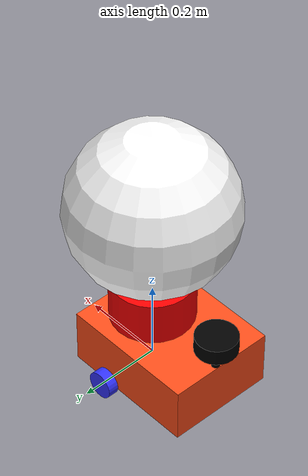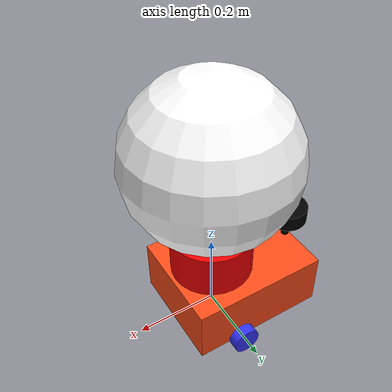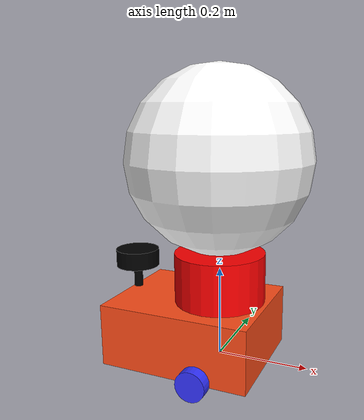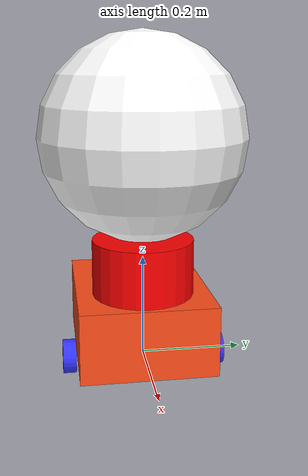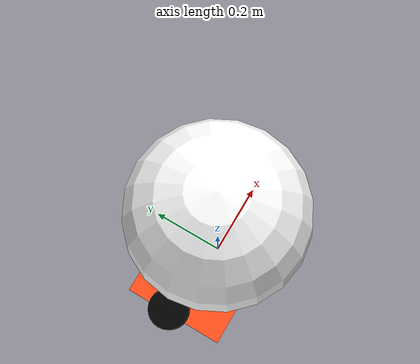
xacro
<?xml version="1.0" ?>
<robot name='robot' xmlns:xacro="http://ros.org/wiki/xacro">

    <xacro:include filename="gazebo.urdf.xacro" />
    <xacro:include filename="lidar.urdf.xacro" />
    <!--xacro:include filename="depth.urdf.xacro" /-->
    <!--xacro:include filename="imu.urdf.xacro" /-->

    <xacro:property name="chassis_length" value="0.335"/>
    <xacro:property name="chassis_width" value="0.265"/>
    <xacro:property name="chassis_height" value="0.138"/>
    <xacro:property name="wheel_radius" value="0.033"/>
    <xacro:property name="wheel_thickness" value="0.026"/>
    <xacro:property name="wheel_mass" value="0.05"/>
    <xacro:property name="wheel_offset_x" value="0.226"/>
    <xacro:property name="wheel_offset_y" value="0.1485"/>
    <xacro:property name="wheel_offset_z" value="0.01"/>
    <xacro:property name="caster_wheel_radius" value="0.01"/>
    <xacro:property name="caster_wheel_mass" value="0.01"/>
    <xacro:property name="caster_wheel_offset_x" value="0.075"/>
    <xacro:property name="caster_wheel_offset_z" value="${wheel_offset_z - wheel_radius + caster_wheel_radius}"/>
    <xacro:property name="mass" value="1.0"/>

    <material name="white">
        <color rgba="1 1 1 1" />
    </material>

    <material name="orange">
        <color rgba="1 0.3 0.1 1"/>
    </material>

    <material name="blue">
        <color rgba="0.2 0.2 1 1"/>
    </material>

    <material name="black">
        <color rgba="0 0 0 1"/>
    </material>

    <material name="red">
        <color rgba="1 0 0 1"/>
    </material>

    <link name="base_link">
    </link>

    <link name="base_footprint">
    </link>

    <joint name="base_footprint_joint" type="fixed">
        <parent link="base_link"/>
        <child link="base_footprint"/>
        <origin xyz="0 0 -0.138" rpy="0 0 0"/>
    </joint>

    <joint name="chassis_joint" type="fixed">
        <parent link="base_link"/>
        <child link="chassis"/>
        <origin xyz="${-wheel_offset_x} 0 ${-wheel_offset_z}"/>
    </joint>

    <link name='chassis'>

    <inertial>
        <origin xyz="${chassis_length/2} 0 ${chassis_height/2}" rpy="0 0 0"/>
        <mass value="${mass}" />
        <inertia ixx="${(1/12) * mass * (chassis_width*chassis_width+chassis_height*chassis_height)}" ixy="0.0" ixz="0.0"
                 iyy="${(1/12) * mass * (chassis_length*chassis_length+chassis_height*chassis_height)}" iyz="0.0"
                 izz="${(1/12) * mass * (chassis_length*chassis_length+chassis_width*chassis_width)}" />
    </inertial>
    <visual>
        <origin xyz="${chassis_length/2} 0 ${chassis_height/2}"/>
        <geometry>
            <box size="${chassis_length} ${chassis_width} ${chassis_height}"/>
        </geometry>
        <material name="orange"/>
    </visual>
    <collision>
        <origin xyz="${chassis_length/2} 0 ${chassis_height/2}"/>
        <geometry>
            <box size="${chassis_length} ${chassis_width} ${chassis_height}"/>
        </geometry>
    </collision>
    </link>

    <gazebo reference="chassis">
        <material>Gazebo/Orange</material>
    </gazebo>

    <joint name="left_wheel_joint" type="continuous">
        <parent link="base_link"/>
        <child link="left_wheel"/>
        <origin xyz="0 ${wheel_offset_y} 0" rpy="-${pi/2} 0 0" />
        <axis xyz="0 0 1"/>
    </joint>

    <link name="left_wheel">
        <visual>
            <geometry>
                <cylinder radius="${wheel_radius}" length="${wheel_thickness}"/>
            </geometry>
            <material name="blue"/>
        </visual>
        <collision>
            <geometry>
                <sphere radius="${wheel_radius}"/>
            </geometry>
        </collision>
        <inertial>
            <origin xyz="0 0 0" rpy="0 0 0"/>
            <mass value="${wheel_mass}" />
            <inertia ixx="${(1/12) * wheel_mass * (3*wheel_radius*wheel_radius + wheel_thickness*wheel_thickness)}" ixy="0.0" ixz="0.0"
                     iyy="${(1/12) * wheel_mass * (3*wheel_radius*wheel_radius + wheel_thickness*wheel_thickness)}" iyz="0.0"
                     izz="${(1/2) * wheel_mass * (wheel_radius*wheel_radius)}" />
        </inertial>
    </link>

    <gazebo reference="left_wheel">
        <material>Gazebo/Blue</material>
    </gazebo>

    <joint name="right_wheel_joint" type="continuous">
        <parent link="base_link"/>
        <child link="right_wheel"/>
        <origin xyz="0 ${-wheel_offset_y} 0" rpy="${pi/2} 0 0" />
        <axis xyz="0 0 -1"/>
    </joint>

    <link name="right_wheel">
        <visual>
            <geometry>
                <cylinder radius="${wheel_radius}" length="${wheel_thickness}"/>
            </geometry>
            <material name="blue"/>
        </visual>
        <collision>
            <geometry>
                <sphere radius="${wheel_radius}"/>
            </geometry>
        </collision>
        <inertial>
            <origin xyz="0 0 0" rpy="0 0 0"/>
            <mass value="${wheel_mass}" />
            <inertia ixx="${(1/12) * wheel_mass * (3*wheel_radius*wheel_radius + wheel_thickness*wheel_thickness)}" ixy="0.0" ixz="0.0"
                     iyy="${(1/12) * wheel_mass * (3*wheel_radius*wheel_radius + wheel_thickness*wheel_thickness)}" iyz="0.0"
                     izz="${(1/2) * wheel_mass * (wheel_radius*wheel_radius)}" />
        </inertial>
    </link>

    <gazebo reference="right_wheel">
        <material>Gazebo/Blue</material>
    </gazebo>

    <joint name="caster_wheel_joint" type="fixed">
        <parent link="chassis"/>
        <child link="caster_wheel"/>
        <origin xyz="${caster_wheel_offset_x} 0 ${caster_wheel_offset_z}"/>
    </joint>

    <link name="caster_wheel">
        <visual>
            <geometry>
                <sphere radius="${caster_wheel_radius}"/>
            </geometry>
            <material name="white"/>
        </visual>
        <collision>
            <geometry>
                <sphere radius="${caster_wheel_radius}"/>
            </geometry>
        </collision>
        <inertial>
            <origin xyz="0 0 0" rpy="0 0 0"/>
            <mass value="${caster_wheel_mass}" />
            <inertia ixx="${(2/5) * caster_wheel_mass * (caster_wheel_radius*caster_wheel_radius)}" ixy="0.0" ixz="0.0"
                     iyy="${(2/5) * caster_wheel_mass * (caster_wheel_radius*caster_wheel_radius)}" iyz="0.0"
                     izz="${(2/5) * caster_wheel_mass * (caster_wheel_radius*caster_wheel_radius)}" />
        </inertial>
    </link>

         <link name="long">
        <visual>
            <geometry>
                <cylinder radius="0.1" length="0.2"/>
            </geometry>
            <material name="red"/>
        </visual>

    </link>

      <joint name="add_long" type="fixed">
    	<parent link="base_link"/>
    	<child link="long"/>
    	<origin rpy="0 0 0" xyz="0 0 0.138"/>
  </joint>

         <link name="shar">
        <visual>
            <geometry>
               <sphere radius="0.2"/>
            </geometry>
            <material name="white"/>
        </visual>

    </link>

      <joint name="add_shar" type="fixed">
    	<parent link="long"/>
    	<child link="shar"/>
    	<origin rpy="0 0 0" xyz="0 0 0.3"/>
  </joint>

    <gazebo reference="caster_wheel">
        <material>Gazebo/White</material>
        <mu1 value="0.001"/>
        <mu2 value="0.001"/>
    </gazebo>

</robot>

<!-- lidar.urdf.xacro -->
<robot xmlns:xacro="http://www.ros.org/wiki/xacro">

    <joint name="laser_joint" type="fixed">
        <parent link="chassis"/>
        <child link="laser_frame"/>
        <origin xyz="0.01 0.01 0.21" rpy="0 0 0"/>
    </joint>

    <link name="laser_frame">
        <visual>
            <geometry>
                <cylinder radius="0.05" length="0.04"/>
            </geometry>
            <material name="black"/>
        </visual>
        <visual>
            <origin xyz="0 0 -0.05"/>
            <geometry>
                <cylinder radius="0.01" length="0.1"/>
            </geometry>
            <material name="black"/>
        </visual>
        <collision>
            <geometry>
                <cylinder radius="0.05" length="0.04"/>
            </geometry>
        </collision>
        <inertial>
            <origin xyz="0 0 0" rpy="0 0 0"/>
            <mass value="0.1" />
            <inertia ixx="${(1/12) * 0.1 * (3*0.05*0.05 + 0.04*0.04)}" ixy="0.0" ixz="0.0"
                     iyy="${(1/12) * 0.1 * (3*0.05*0.05 + 0.04*0.04)}" iyz="0.0"
                     izz="${(1/2) * 0.1 * (0.05*0.05)}" />
        </inertial>
    </link>

    <gazebo reference="laser_frame">
        <material>Gazebo/Black</material>

        <sensor name='laser_sensor_frame' type='gpu_lidar'>"
            <gz_frame_id>robot/laser_frame</gz_frame_id>
            <pose> 0 0 0 0 0 0 </pose>
            <visualize>true</visualize>
            <always_on>true</always_on>
            <update_rate>10</update_rate>
            <ray>
                <scan>
                    <horizontal>
                        <samples>360</samples>
                        <min_angle>-3.14</min_angle>
                        <max_angle>3.14</max_angle>
                    </horizontal>
                </scan>
                <range>
                    <min>0.3</min>
                    <max>12</max>
                </range>
                <noise>
                    <type>gaussian</type>
                    <mean>0.0</mean>
                    <stddev>0.007</stddev>
                </noise>
            </ray>
        </sensor>
    </gazebo>
</robot>
